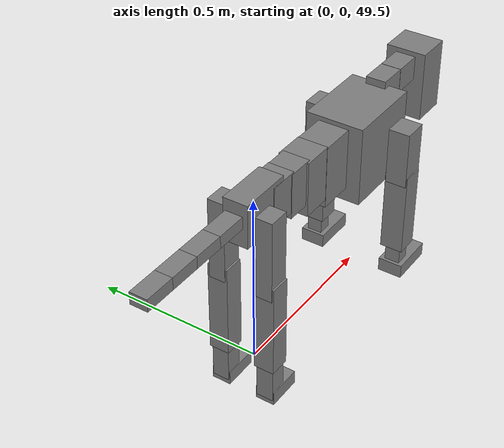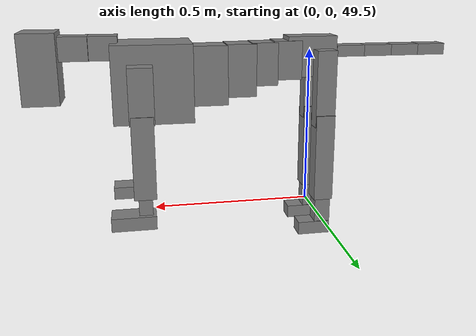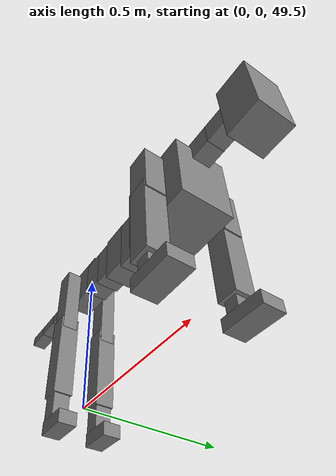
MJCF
<mujoco model="dog">

    <default>
        <joint armature="0.02" stiffness="1" damping="0.2" limited="true"/>
        <geom condim="3" friction="1 0.05 0.05" margin="0.01"/>
        <motor ctrllimited="true" ctrlrange="-1.0 1.0" forcelimited="true" gear="50"/>
    </default>

    <compiler inertiafromgeom="true" angle="radian"/>

    <option timestep="0.016" iterations="50" tolerance="1e-10" solver="Newton" jacobian="dense" cone="pyramidal"/>

    <size nconmax="20000" njmax="60000" nstack="5000000"/>
    <visual>
        <map force="0.1" zfar="30"/>
        <rgba haze="0.15 0.25 0.35 1"/>
        <quality shadowsize="2048"/>
        <global offwidth="800" offheight="800"/>
    </visual>

    <asset>
        <texture type="skybox" builtin="gradient" rgb1="0.3 0.5 0.7" rgb2="0 0 0" width="512" height="512"/>
        <texture name="texplane" type="2d" builtin="checker" rgb1=".2 .3 .4" rgb2=".1 0.15 0.2" width="512" height="512"
                 mark="cross" markrgb=".8 .8 .8"/>
        <texture name="texgeom" type="cube" builtin="flat" mark="cross" width="127" height="1278" rgb1="0.8 0.6 0.4"
                 rgb2="0.8 0.6 0.4" markrgb="1 1 1" random="0.01"/>

        <material name="matplane" reflectance="0.3" texture="texplane" texrepeat="1 1" texuniform="true"/>
        <material name="matgeom" texture="texgeom" texuniform="true" rgba="0.8 0.6 .4 1"/>
    </asset>

    <worldbody>
        <geom name="floor" pos="0 0 0" size="0 0 .25" type="plane" material="matplane" condim="3"/>

        <light directional="false" diffuse=".2 .2 .2" specular="0 0 0" pos="0 0 5" dir="0 0 -1" castshadow="false"/>
        <light mode="targetbodycom" target="torso" directional="false" diffuse=".8 .8 .8" specular="0.3 0.3 0.3"
               pos="0 0 4.0" dir="0 0 -1"/>

        <body name="root" pos="0 0 50">
            <freejoint name="root_1"/>
            <geom type="box" pos="0 0 -0.02" size="0.0774  0.0358  0.063" density="2030"/>

            <body name="spine1" pos="0.054 0 0">
                <joint name="spine1_y" axis="0 1 0" range="0 0.7" limited="true"/>
                <geom type="box" pos="0.02375 0 -0.03" size="0.04375  0.0375  0.05985" density="2030"/>

                <body name="spine2" pos="0.0612 0 0">
                    <joint name="spine2_y" axis="0 1 0" range="-0.15 0.15" limited="true"/>
                    <geom type="box" pos="0.03555  0  -0.04" size="0.04055  0.039  0.06615" density="2030"/>

                    <body name="spine3" pos="0.0730 0 0">
                        <joint name="spine3_y" axis="0 1 0" range="-0.15 0.15" limited="true"/>
                        <geom type="box" pos="0.03555  0  -0.057" size="0.04555  0.0445  0.081" density="2030"/>

                        <body name="spine4" pos="0.0780 0 0">
                            <joint name="spine4_y" axis="0 1 0" range="-0.15 0.15" limited="true"/>
                            <geom type="box" pos="0.05265  0  -0.07" size="0.05265  0.045  0.09135" density="2030"/>

                            <body name="torso" pos="0.1082 0 0">
                                <joint name="torso_y" axis="0 1 0" range="-0.15 0.15" limited="true"/>
                                <geom type="box" pos="0.11925  0  -0.085" size="0.11925  0.085  0.11745"
                                      density="2030"/>

                                <body name="neck1" pos="0.2160  0   0.0180">
                                    <joint name="neck1_y" axis="0 1 0" range="-1.2  -1" limited="true"/>
                                    <geom type="box" pos="0.0423  0  0" size="0.0423  0.03  0.036" density="2325"/>

                                    <body name="neck2" pos="0.0853  0  0">
                                        <joint name="neck2_y" axis="0 1 0" range="0.1  0" limited="true"/>
                                        <geom type="box" pos="0.0423  0  0" size="0.0423  0.03  0.036" density="2325"/>

                                        <body name="head" pos="0.0853  0  0">
                                            <joint name="head_y" axis="0 1 0" range="-0.3  -0.2" limited="true"/>
                                            <geom type="box" pos="0.0531  0  -0.055" size="0.0531  0.06  0.1044"
                                                  density="4030"/>

                                        </body>
                                    </body>
                                </body>

                                <body name="front_shoulder" pos="0.156  0   -0.0480">
                                    <joint name="front_shoulder_y" axis="0 1 0" range="-1 1.5" limited="true"/>
                                    <geom type="box" pos="0 0.13 -0.0564" size="0.0360  0.0308  0.0830" density="1158"/>
                                    <geom type="box" pos="0 -0.13 -0.0564" size="0.0360  0.0308  0.0830"
                                          density="1158"/>

                                    <body name="front_elbow" pos="0  0  -0.1127">
                                        <joint name="front_elbow_y" axis="0 1 0" range="-2 0" limited="true"/>
                                        <geom type="box" pos="0 0.13 -0.1240" size="0.0327  0.0335  0.1240"
                                              density="1081"/>
                                        <geom type="box" pos="0 -0.13 -0.1240" size="0.0327  0.0335  0.1240"
                                              density="1081"/>

                                        <body name="front_wrist" pos="0  0  -0.2480">
                                            <joint name="front_wrist_y" axis="0 1 0" range="-0.2 0" limited="true"/>
                                            <geom type="box" pos="0 0.13 -0.0335" size="0.0203  0.0225  0.0467"
                                                  density="1664"/>
                                            <geom type="box" pos="0 -0.13 -0.0335" size="0.0203  0.0225  0.0467"
                                                  density="1664"/>

                                            <body name="front_finger_end" pos="0  0  -0.0671">
                                                <joint name="front_finger_y" axis="0 1 0" range="-0.4 1"
                                                       limited="true"/>
                                                <geom type="box" pos="0.0360  0.13  -0.0053"
                                                      size="0.0659  0.0360  0.0203" density="1515"/>
                                                <geom type="box" pos="0.0360  -0.13  -0.0053"
                                                      size="0.0659  0.0360  0.0203" density="1515"/>

                                            </body>

                                        </body>
                                    </body>
                                </body>

                            </body>
                        </body>
                    </body>
                </body>
            </body>

            <body name="back_hip" pos="-0.03 0 -0.018">
                <joint name="back_hip_y" axis="0 1 0" range="-1.5 0.3" limited="true"/>
                <geom type="box" pos="0 0.07 -0.0969" size="0.0306  0.0240  0.1197" density="1154"/>
                <geom type="box" pos="0 -0.07 -0.0969" size="0.0306  0.0240  0.1197" density="1154"/>

                <body name="back_knee" pos="0  0  -0.1938">
                    <joint name="back_knee_y" axis="0 1 0" range="0 2.8" limited="true"/>
                    <geom type="box" pos="0 0.07 -0.1219" size="0.0298  0.0293  0.1375" density="1227"/>
                    <geom type="box" pos="0 -0.07 -0.1219" size="0.0298  0.0293  0.1375" density="1227"/>

                    <body name="back_ankle" pos="0  0  -0.2438">
                        <joint name="back_ankle_y" axis="0 1 0" range="-2.2 0" limited="true"/>
                        <geom type="box" pos="0 0.07 -0.0531" size="0.0247  0.0247  0.0644" density="1284"/>
                        <geom type="box" pos="0 -0.07 -0.0531" size="0.0247  0.0247  0.0644" density="1284"/>

                        <body name="back_toe_end" pos="0  0  -0.1062">
                            <joint name="back_toe_y" axis="0 1 0" range="-0.4 1" limited="true"/>
                            <geom type="box" pos="0.0275  0.07  -0.0055" size="0.0504  0.0275  0.0205" density="1515"/>
                            <geom type="box" pos="0.0275  -0.07  -0.0055" size="0.0504  0.0275  0.0205" density="1515"/>

                        </body>
                    </body>
                </body>
            </body>

            <body name="tail1" pos="-0.074 0 -0.006">
                <joint name="tail1_y" axis="0 1 0" range="-0.2 0.2" limited="true"/>
                <geom type="box" pos="-0.0536  0  0" size="0.045  0.025  0.0175" density="1587"/>

                <body name="tail2" pos="-0.09 0 0">
                    <joint name="tail2_y" axis="0 1 0" range="-0.2 0.2" limited="true"/>
                    <geom type="box" pos="-0.0536  0  0" size="0.045  0.025  0.0175" density="1587"/>

                    <body name="tail3" pos="-0.09 0 0">
                        <joint name="tail3_y" axis="0 1 0" range="-0.2 0.2" limited="true"/>
                        <geom type="box" pos="-0.0536  0  0" size="0.045  0.025  0.0175" density="1587"/>

                        <body name="tail4" pos="-0.09 0 0">
                            <joint name="tail4_y" axis="0 1 0" range="-0.2 0.2" limited="true"/>
                            <geom type="box" pos="-0.0536  0  0" size="0.045  0.025  0.0175" density="1587"/>

                        </body>
                    </body>
                </body>
            </body>
        </body>
    </worldbody>

    <actuator>
        <motor joint="spine1_y" forcerange="-150 150     "/>
        <motor joint="spine2_y" forcerange="-150 150     "/>
        <motor joint="spine3_y" forcerange="-150 150     "/>
        <motor joint="spine4_y" forcerange="-150 150     "/>
        <motor joint="torso_y" forcerange="-150 150     "/>
        <motor joint="neck1_y" forcerange="-100 100       "/>
        <motor joint="neck2_y" forcerange="-100 100       "/>
        <motor joint="head_y" forcerange="-150 150       "/>
        <motor joint="front_shoulder_y" forcerange="-169.55 135.52"/>
        <motor joint="front_elbow_y" forcerange="-168.36 175.00"/>
        <motor joint="front_wrist_y" forcerange="-79.54 100.82"/>
        <motor joint="front_finger_y" forcerange="-69.76 81.99"/>
        <motor joint="back_hip_y" forcerange="-246.70 272.92"/>
        <motor joint="back_knee_y" forcerange="-385.39 241.32"/>
        <motor joint="back_angle_y" forcerange="-107.15 188.34"/>
        <motor joint="back_toe_y" forcerange="-93.72 46.23"/>
        <motor joint="tail1_y" forcerange="-50 50     "/>
        <motor joint="tail2_y" forcerange="-50 50     "/>
        <motor joint="tail3_y" forcerange="-50 50     "/>
        <motor joint="tail4_y" forcerange="-50 50     "/>
    </actuator>
</mujoco>
